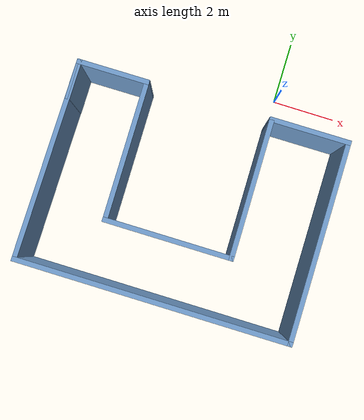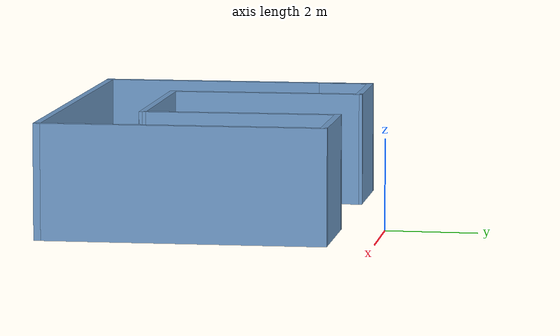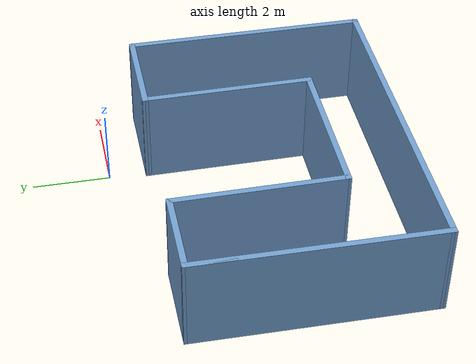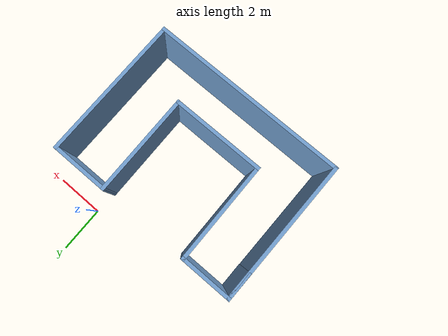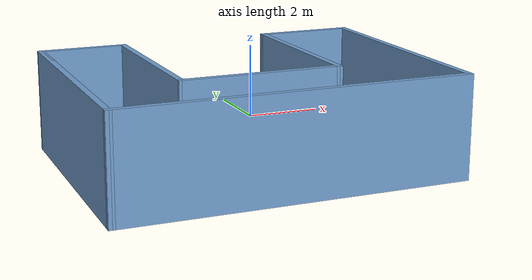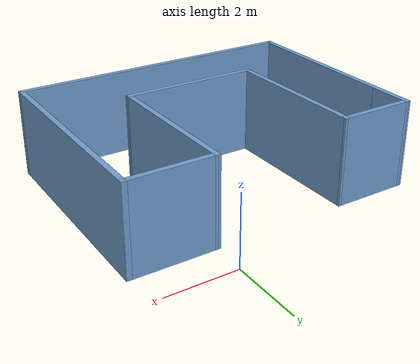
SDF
<?xml version='1.0'?>
<sdf version='1.7'>
  <model name='building'>
    <pose>-1.8653 -3.60276 0 0 -0 0</pose>
    <link name='Wall_0'>
      <collision name='Wall_0_Collision'>
        <geometry>
          <box>
            <size>2.25 0.15 2.5</size>
          </box>
        </geometry>
        <pose>0 0 1.25 0 -0 0</pose>
      </collision>
      <visual name='Wall_0_Visual'>
        <pose>0 0 1.25 0 -0 0</pose>
        <geometry>
          <box>
            <size>2.25 0.15 2.5</size>
          </box>
        </geometry>
        <material>
          <script>
            <uri>file://media/materials/scripts/gazebo.material</uri>
            <name>Gazebo/Grey</name>
          </script>
          <ambient>0.447059 0.623529 0.811765 1</ambient>
        </material>
        <meta>
          <layer>0</layer>
        </meta>
      </visual>
      <pose>-3.0747 2.57275 0 0 -0 0</pose>
    </link>
    <link name='Wall_1'>
      <collision name='Wall_1_Collision'>
        <geometry>
          <box>
            <size>4.3967 0.15 2.5</size>
          </box>
        </geometry>
        <pose>0 0 1.25 0 -0 0</pose>
      </collision>
      <visual name='Wall_1_Visual'>
        <pose>0 0 1.25 0 -0 0</pose>
        <geometry>
          <box>
            <size>4.3967 0.15 2.5</size>
          </box>
        </geometry>
        <material>
          <script>
            <uri>file://media/materials/scripts/gazebo.material</uri>
            <name>Gazebo/Grey</name>
          </script>
          <ambient>0.447059 0.623529 0.811765 1</ambient>
        </material>
        <meta>
          <layer>0</layer>
        </meta>
      </visual>
      <pose>-2.0094 0.449457 0 0 -0 -1.56359</pose>
    </link>
    <link name='Wall_2'>
      <collision name='Wall_2_Collision'>
        <geometry>
          <box>
            <size>4 0.15 2.5</size>
          </box>
        </geometry>
        <pose>0 0 1.25 0 -0 0</pose>
      </collision>
      <visual name='Wall_2_Visual'>
        <pose>0 0 1.25 0 -0 0</pose>
        <geometry>
          <box>
            <size>4 0.15 2.5</size>
          </box>
        </geometry>
        <material>
          <script>
            <uri>file://media/materials/scripts/gazebo.material</uri>
            <name>Gazebo/Grey</name>
          </script>
          <ambient>0.447059 0.623529 0.811765 1</ambient>
        </material>
        <meta>
          <layer>0</layer>
        </meta>
      </visual>
      <pose>-0.069104 -1.67384 0 0 -0 0</pose>
    </link>
    <link name='Wall_3'>
      <collision name='Wall_3_Collision'>
        <geometry>
          <box>
            <size>4.3967 0.15 2.5</size>
          </box>
        </geometry>
        <pose>0 0 1.25 0 -0 0</pose>
      </collision>
      <visual name='Wall_3_Visual'>
        <pose>0 0 1.25 0 -0 0</pose>
        <geometry>
          <box>
            <size>4.3967 0.15 2.5</size>
          </box>
        </geometry>
        <material>
          <script>
            <uri>file://media/materials/scripts/gazebo.material</uri>
            <name>Gazebo/Grey</name>
          </script>
          <ambient>0.447059 0.623529 0.811765 1</ambient>
        </material>
        <meta>
          <layer>0</layer>
        </meta>
      </visual>
      <pose>1.8406 0.449457 0 0 -0 1.578</pose>
    </link>
    <link name='Wall_4'>
      <collision name='Wall_4_Collision'>
        <geometry>
          <box>
            <size>2.5 0.15 2.5</size>
          </box>
        </geometry>
        <pose>0 0 1.25 0 -0 0</pose>
      </collision>
      <visual name='Wall_4_Visual'>
        <pose>0 0 1.25 0 -0 0</pose>
        <geometry>
          <box>
            <size>2.5 0.15 2.5</size>
          </box>
        </geometry>
        <material>
          <script>
            <uri>file://media/materials/scripts/gazebo.material</uri>
            <name>Gazebo/Grey</name>
          </script>
          <ambient>0.447059 0.623529 0.811765 1</ambient>
        </material>
        <meta>
          <layer>0</layer>
        </meta>
      </visual>
      <pose>3.0003 2.57275 0 0 -0 0</pose>
    </link>
    <link name='Wall_5'>
      <collision name='Wall_5_Collision'>
        <geometry>
          <box>
            <size>6.25 0.15 2.5</size>
          </box>
        </geometry>
        <pose>0 0 1.25 0 -0 0</pose>
      </collision>
      <visual name='Wall_5_Visual'>
        <pose>0 0 1.25 0 -0 0</pose>
        <geometry>
          <box>
            <size>6.25 0.15 2.5</size>
          </box>
        </geometry>
        <material>
          <script>
            <uri>file://media/materials/scripts/gazebo.material</uri>
            <name>Gazebo/Grey</name>
          </script>
          <ambient>0.447059 0.623529 0.811765 1</ambient>
        </material>
        <meta>
          <layer>0</layer>
        </meta>
      </visual>
      <pose>4.1753 -0.477245 0 0 -0 -1.5708</pose>
    </link>
    <link name='Wall_6'>
      <collision name='Wall_6_Collision'>
        <geometry>
          <box>
            <size>8.5 0.15 2.5</size>
          </box>
        </geometry>
        <pose>0 0 1.25 0 -0 0</pose>
      </collision>
      <visual name='Wall_6_Visual'>
        <pose>0 0 1.25 0 -0 0</pose>
        <geometry>
          <box>
            <size>8.5 0.15 2.5</size>
          </box>
        </geometry>
        <material>
          <script>
            <uri>file://media/materials/scripts/gazebo.material</uri>
            <name>Gazebo/Grey</name>
          </script>
          <ambient>0.447059 0.623529 0.811765 1</ambient>
        </material>
        <meta>
          <layer>0</layer>
        </meta>
      </visual>
      <pose>0.000305 -3.52725 0 0 -0 3.14159</pose>
    </link>
    <link name='Wall_7'>
      <collision name='Wall_7_Collision'>
        <geometry>
          <box>
            <size>6.25 0.15 2.5</size>
          </box>
        </geometry>
        <pose>0 0 1.25 0 -0 0</pose>
      </collision>
      <visual name='Wall_7_Visual'>
        <pose>0 0 1.25 0 -0 0</pose>
        <geometry>
          <box>
            <size>6.25 0.15 2.5</size>
          </box>
        </geometry>
        <material>
          <script>
            <uri>file://media/materials/scripts/gazebo.material</uri>
            <name>Gazebo/Grey</name>
          </script>
          <ambient>0.447059 0.623529 0.811765 1</ambient>
        </material>
        <meta>
          <layer>0</layer>
        </meta>
      </visual>
      <pose>-4.14969 -0.477245 0 0 -0 1.5626</pose>
    </link>
    <link name='Wall_8'>
      <collision name='Wall_8_Collision'>
        <geometry>
          <box>
            <size>1.25 0.15 2.5</size>
          </box>
        </geometry>
        <pose>0 0 1.25 0 -0 0</pose>
      </collision>
      <visual name='Wall_8_Visual'>
        <pose>0 0 1.25 0 -0 0</pose>
        <geometry>
          <box>
            <size>1.25 0.15 2.5</size>
          </box>
        </geometry>
        <material>
          <script>
            <uri>file://media/materials/scripts/gazebo.material</uri>
            <name>Gazebo/Grey</name>
          </script>
          <ambient>0.447059 0.623529 0.811765 1</ambient>
        </material>
        <meta>
          <layer>0</layer>
        </meta>
      </visual>
      <pose>-4.12469 2.02276 0 0 -0 -1.5708</pose>
    </link>
    <static>1</static>
  </model>
</sdf>
